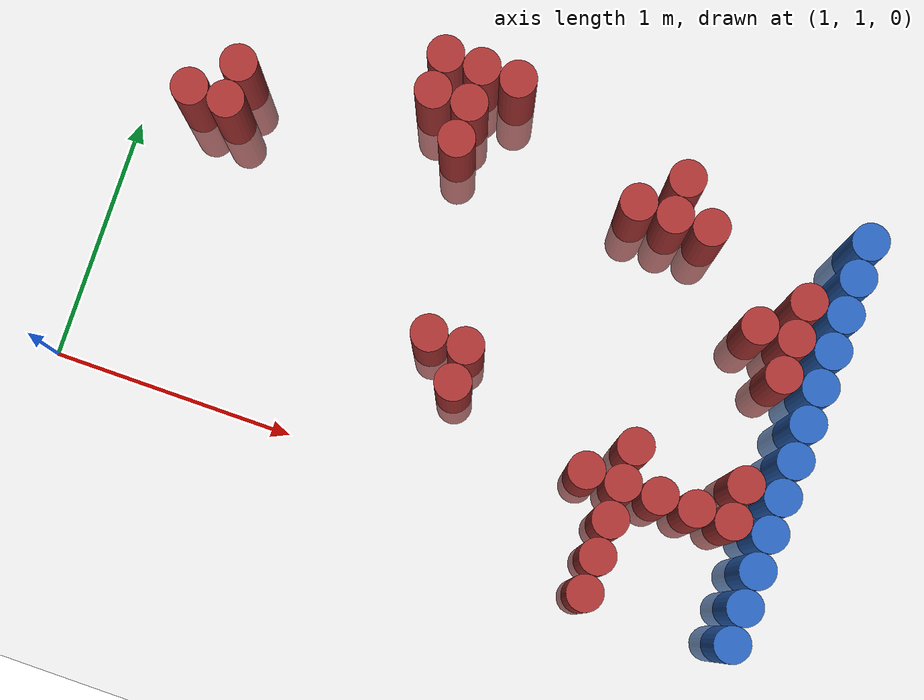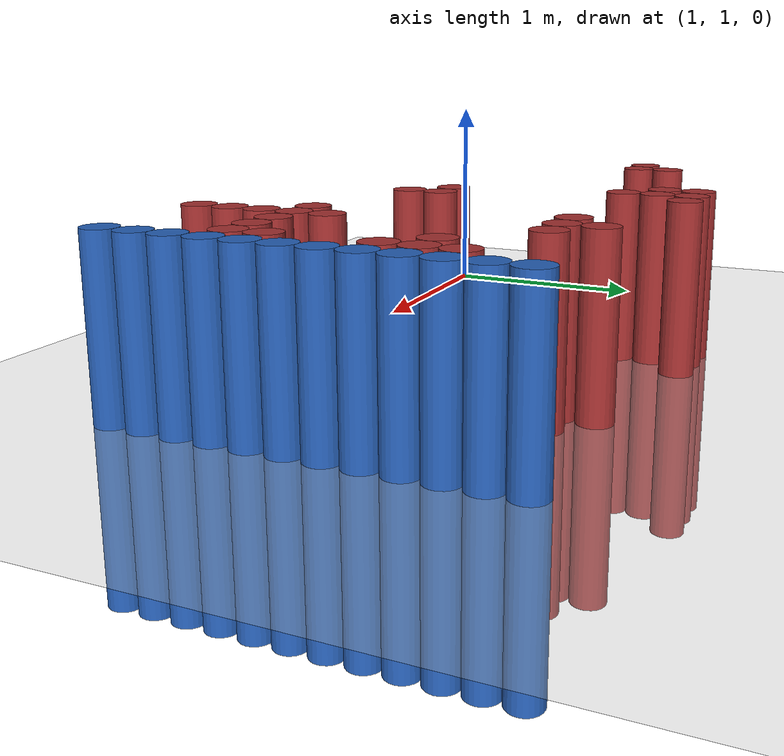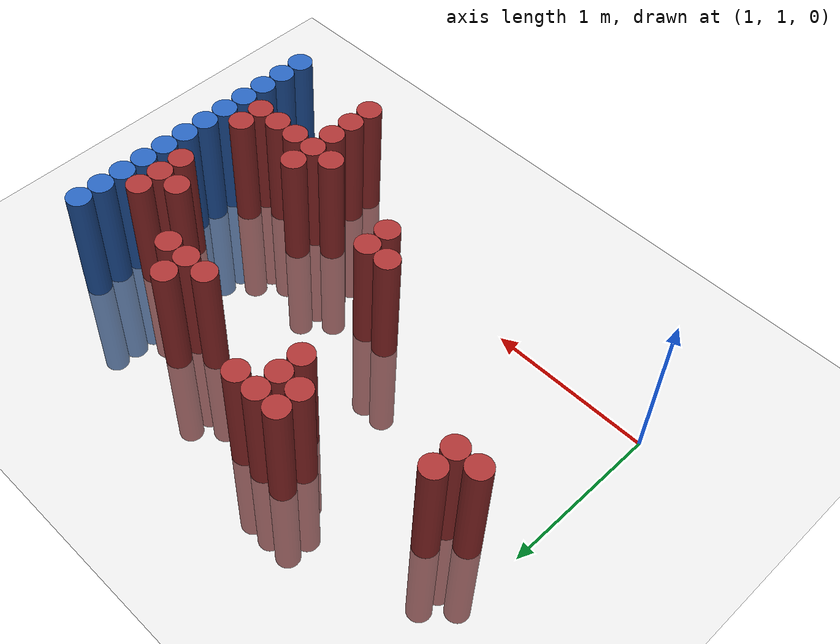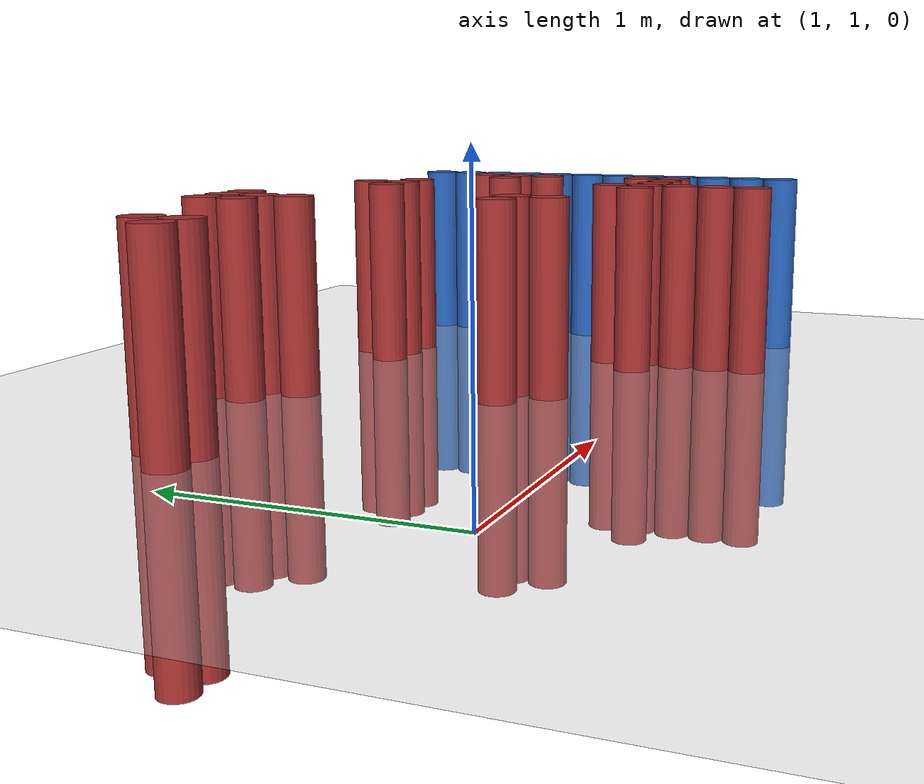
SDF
<sdf version="1.6">
 <world name="default">
  <model name="ground_plane">
   <static>1</static>
   <link name="link">
    <collision name="collision">
     <geometry><plane><normal>0 0 1</normal><size>100 100</size></plane></geometry>
     <surface><friction><ode><mu>100</mu><mu2>50</mu2></ode></friction></surface>
    </collision>
    <visual name="visual">
     <cast_shadows>0</cast_shadows>
     <geometry><plane><normal>0 0 1</normal><size>100 100</size></plane></geometry>
     <material>
      <script><uri>file://media/materials/scripts/gazebo.material</uri><name>Gazebo/Grey</name></script>
     </material>
    </visual>
   </link>
  </model>
  <model name="unit_cylinder_124">
   <static>1</static>
   <pose>3.925000 0.775000 0.000000 0.000000 0.000000 0.000000</pose>
   <link name="link">
    <inertial>
     <mass>1</mass>
     <inertia><ixx>0.145833</ixx><ixy>0</ixy><ixz>0</ixz><iyy>0.145833</iyy><iyz>0</iyz><izz>0.125</izz></inertia>
    </inertial>
    <collision name="collision">
     <geometry><cylinder><radius>0.075000</radius><length>1.5</length></cylinder></geometry>
    </collision>
    <visual name="visual">
     <geometry><cylinder><radius>0.075000</radius><length>1.5</length></cylinder></geometry>
     <material>
      <ambient>0.152000 0.379000 0.720000 1</ambient>
      <diffuse>0.152000 0.379000 0.720000 1</diffuse>
     </material>
     <material>
      <script><name>Gazebo/Grey</name><uri>file://media/materials/scripts/gazebo.material</uri></script>
     </material>
    </visual>
   </link>
  </model>
  <model name="unit_cylinder_126">
   <static>1</static>
   <pose>3.925000 0.925000 0.000000 0.000000 0.000000 0.000000</pose>
   <link name="link">
    <inertial>
     <mass>1</mass>
     <inertia><ixx>0.145833</ixx><ixy>0</ixy><ixz>0</ixz><iyy>0.145833</iyy><iyz>0</iyz><izz>0.125</izz></inertia>
    </inertial>
    <collision name="collision">
     <geometry><cylinder><radius>0.075000</radius><length>1.5</length></cylinder></geometry>
    </collision>
    <visual name="visual">
     <geometry><cylinder><radius>0.075000</radius><length>1.5</length></cylinder></geometry>
     <material>
      <ambient>0.152000 0.379000 0.720000 1</ambient>
      <diffuse>0.152000 0.379000 0.720000 1</diffuse>
     </material>
     <material>
      <script><name>Gazebo/Grey</name><uri>file://media/materials/scripts/gazebo.material</uri></script>
     </material>
    </visual>
   </link>
  </model>
  <model name="unit_cylinder_128">
   <static>1</static>
   <pose>3.925000 1.075000 0.000000 0.000000 0.000000 0.000000</pose>
   <link name="link">
    <inertial>
     <mass>1</mass>
     <inertia><ixx>0.145833</ixx><ixy>0</ixy><ixz>0</ixz><iyy>0.145833</iyy><iyz>0</iyz><izz>0.125</izz></inertia>
    </inertial>
    <collision name="collision">
     <geometry><cylinder><radius>0.075000</radius><length>1.5</length></cylinder></geometry>
    </collision>
    <visual name="visual">
     <geometry><cylinder><radius>0.075000</radius><length>1.5</length></cylinder></geometry>
     <material>
      <ambient>0.152000 0.379000 0.720000 1</ambient>
      <diffuse>0.152000 0.379000 0.720000 1</diffuse>
     </material>
     <material>
      <script><name>Gazebo/Grey</name><uri>file://media/materials/scripts/gazebo.material</uri></script>
     </material>
    </visual>
   </link>
  </model>
  <model name="unit_cylinder_130">
   <static>1</static>
   <pose>3.925000 1.225000 0.000000 0.000000 0.000000 0.000000</pose>
   <link name="link">
    <inertial>
     <mass>1</mass>
     <inertia><ixx>0.145833</ixx><ixy>0</ixy><ixz>0</ixz><iyy>0.145833</iyy><iyz>0</iyz><izz>0.125</izz></inertia>
    </inertial>
    <collision name="collision">
     <geometry><cylinder><radius>0.075000</radius><length>1.5</length></cylinder></geometry>
    </collision>
    <visual name="visual">
     <geometry><cylinder><radius>0.075000</radius><length>1.5</length></cylinder></geometry>
     <material>
      <ambient>0.152000 0.379000 0.720000 1</ambient>
      <diffuse>0.152000 0.379000 0.720000 1</diffuse>
     </material>
     <material>
      <script><name>Gazebo/Grey</name><uri>file://media/materials/scripts/gazebo.material</uri></script>
     </material>
    </visual>
   </link>
  </model>
  <model name="unit_cylinder_132">
   <static>1</static>
   <pose>3.925000 1.375000 0.000000 0.000000 0.000000 0.000000</pose>
   <link name="link">
    <inertial>
     <mass>1</mass>
     <inertia><ixx>0.145833</ixx><ixy>0</ixy><ixz>0</ixz><iyy>0.145833</iyy><iyz>0</iyz><izz>0.125</izz></inertia>
    </inertial>
    <collision name="collision">
     <geometry><cylinder><radius>0.075000</radius><length>1.5</length></cylinder></geometry>
    </collision>
    <visual name="visual">
     <geometry><cylinder><radius>0.075000</radius><length>1.5</length></cylinder></geometry>
     <material>
      <ambient>0.152000 0.379000 0.720000 1</ambient>
      <diffuse>0.152000 0.379000 0.720000 1</diffuse>
     </material>
     <material>
      <script><name>Gazebo/Grey</name><uri>file://media/materials/scripts/gazebo.material</uri></script>
     </material>
    </visual>
   </link>
  </model>
  <model name="unit_cylinder_134">
   <static>1</static>
   <pose>3.925000 1.525000 0.000000 0.000000 0.000000 0.000000</pose>
   <link name="link">
    <inertial>
     <mass>1</mass>
     <inertia><ixx>0.145833</ixx><ixy>0</ixy><ixz>0</ixz><iyy>0.145833</iyy><iyz>0</iyz><izz>0.125</izz></inertia>
    </inertial>
    <collision name="collision">
     <geometry><cylinder><radius>0.075000</radius><length>1.5</length></cylinder></geometry>
    </collision>
    <visual name="visual">
     <geometry><cylinder><radius>0.075000</radius><length>1.5</length></cylinder></geometry>
     <material>
      <ambient>0.152000 0.379000 0.720000 1</ambient>
      <diffuse>0.152000 0.379000 0.720000 1</diffuse>
     </material>
     <material>
      <script><name>Gazebo/Grey</name><uri>file://media/materials/scripts/gazebo.material</uri></script>
     </material>
    </visual>
   </link>
  </model>
  <model name="unit_cylinder_136">
   <static>1</static>
   <pose>3.925000 1.675000 0.000000 0.000000 0.000000 0.000000</pose>
   <link name="link">
    <inertial>
     <mass>1</mass>
     <inertia><ixx>0.145833</ixx><ixy>0</ixy><ixz>0</ixz><iyy>0.145833</iyy><iyz>0</iyz><izz>0.125</izz></inertia>
    </inertial>
    <collision name="collision">
     <geometry><cylinder><radius>0.075000</radius><length>1.5</length></cylinder></geometry>
    </collision>
    <visual name="visual">
     <geometry><cylinder><radius>0.075000</radius><length>1.5</length></cylinder></geometry>
     <material>
      <ambient>0.152000 0.379000 0.720000 1</ambient>
      <diffuse>0.152000 0.379000 0.720000 1</diffuse>
     </material>
     <material>
      <script><name>Gazebo/Grey</name><uri>file://media/materials/scripts/gazebo.material</uri></script>
     </material>
    </visual>
   </link>
  </model>
  <model name="unit_cylinder_138">
   <static>1</static>
   <pose>3.925000 1.825000 0.000000 0.000000 0.000000 0.000000</pose>
   <link name="link">
    <inertial>
     <mass>1</mass>
     <inertia><ixx>0.145833</ixx><ixy>0</ixy><ixz>0</ixz><iyy>0.145833</iyy><iyz>0</iyz><izz>0.125</izz></inertia>
    </inertial>
    <collision name="collision">
     <geometry><cylinder><radius>0.075000</radius><length>1.5</length></cylinder></geometry>
    </collision>
    <visual name="visual">
     <geometry><cylinder><radius>0.075000</radius><length>1.5</length></cylinder></geometry>
     <material>
      <ambient>0.152000 0.379000 0.720000 1</ambient>
      <diffuse>0.152000 0.379000 0.720000 1</diffuse>
     </material>
     <material>
      <script><name>Gazebo/Grey</name><uri>file://media/materials/scripts/gazebo.material</uri></script>
     </material>
    </visual>
   </link>
  </model>
  <model name="unit_cylinder_140">
   <static>1</static>
   <pose>3.925000 1.975000 0.000000 0.000000 0.000000 0.000000</pose>
   <link name="link">
    <inertial>
     <mass>1</mass>
     <inertia><ixx>0.145833</ixx><ixy>0</ixy><ixz>0</ixz><iyy>0.145833</iyy><iyz>0</iyz><izz>0.125</izz></inertia>
    </inertial>
    <collision name="collision">
     <geometry><cylinder><radius>0.075000</radius><length>1.5</length></cylinder></geometry>
    </collision>
    <visual name="visual">
     <geometry><cylinder><radius>0.075000</radius><length>1.5</length></cylinder></geometry>
     <material>
      <ambient>0.152000 0.379000 0.720000 1</ambient>
      <diffuse>0.152000 0.379000 0.720000 1</diffuse>
     </material>
     <material>
      <script><name>Gazebo/Grey</name><uri>file://media/materials/scripts/gazebo.material</uri></script>
     </material>
    </visual>
   </link>
  </model>
  <model name="unit_cylinder_142">
   <static>1</static>
   <pose>3.925000 2.125000 0.000000 0.000000 0.000000 0.000000</pose>
   <link name="link">
    <inertial>
     <mass>1</mass>
     <inertia><ixx>0.145833</ixx><ixy>0</ixy><ixz>0</ixz><iyy>0.145833</iyy><iyz>0</iyz><izz>0.125</izz></inertia>
    </inertial>
    <collision name="collision">
     <geometry><cylinder><radius>0.075000</radius><length>1.5</length></cylinder></geometry>
    </collision>
    <visual name="visual">
     <geometry><cylinder><radius>0.075000</radius><length>1.5</length></cylinder></geometry>
     <material>
      <ambient>0.152000 0.379000 0.720000 1</ambient>
      <diffuse>0.152000 0.379000 0.720000 1</diffuse>
     </material>
     <material>
      <script><name>Gazebo/Grey</name><uri>file://media/materials/scripts/gazebo.material</uri></script>
     </material>
    </visual>
   </link>
  </model>
  <model name="unit_cylinder_144">
   <static>1</static>
   <pose>3.925000 2.275000 0.000000 0.000000 0.000000 0.000000</pose>
   <link name="link">
    <inertial>
     <mass>1</mass>
     <inertia><ixx>0.145833</ixx><ixy>0</ixy><ixz>0</ixz><iyy>0.145833</iyy><iyz>0</iyz><izz>0.125</izz></inertia>
    </inertial>
    <collision name="collision">
     <geometry><cylinder><radius>0.075000</radius><length>1.5</length></cylinder></geometry>
    </collision>
    <visual name="visual">
     <geometry><cylinder><radius>0.075000</radius><length>1.5</length></cylinder></geometry>
     <material>
      <ambient>0.152000 0.379000 0.720000 1</ambient>
      <diffuse>0.152000 0.379000 0.720000 1</diffuse>
     </material>
     <material>
      <script><name>Gazebo/Grey</name><uri>file://media/materials/scripts/gazebo.material</uri></script>
     </material>
    </visual>
   </link>
  </model>
  <model name="unit_cylinder_146">
   <static>1</static>
   <pose>3.925000 2.425000 0.000000 0.000000 0.000000 0.000000</pose>
   <link name="link">
    <inertial>
     <mass>1</mass>
     <inertia><ixx>0.145833</ixx><ixy>0</ixy><ixz>0</ixz><iyy>0.145833</iyy><iyz>0</iyz><izz>0.125</izz></inertia>
    </inertial>
    <collision name="collision">
     <geometry><cylinder><radius>0.075000</radius><length>1.5</length></cylinder></geometry>
    </collision>
    <visual name="visual">
     <geometry><cylinder><radius>0.075000</radius><length>1.5</length></cylinder></geometry>
     <material>
      <ambient>0.152000 0.379000 0.720000 1</ambient>
      <diffuse>0.152000 0.379000 0.720000 1</diffuse>
     </material>
     <material>
      <script><name>Gazebo/Grey</name><uri>file://media/materials/scripts/gazebo.material</uri></script>
     </material>
    </visual>
   </link>
  </model>
  <model name="unit_cylinder_416">
   <static>1</static>
   <pose>1.225000 2.125000 0.000000 0.000000 0.000000 0.000000</pose>
   <link name="link">
    <inertial>
     <mass>1</mass>
     <inertia><ixx>0.145833</ixx><ixy>0</ixy><ixz>0</ixz><iyy>0.145833</iyy><iyz>0</iyz><izz>0.125</izz></inertia>
    </inertial>
    <collision name="collision">
     <geometry><cylinder><radius>0.075000</radius><length>1.5</length></cylinder></geometry>
    </collision>
    <visual name="visual">
     <geometry><cylinder><radius>0.075000</radius><length>1.5</length></cylinder></geometry>
     <material>
      <ambient>0.648000 0.192000 0.192000 1</ambient>
      <diffuse>0.648000 0.192000 0.192000 1</diffuse>
     </material>
     <material>
      <script><name>Gazebo/Grey</name><uri>file://media/materials/scripts/gazebo.material</uri></script>
     </material>
    </visual>
   </link>
  </model>
  <model name="unit_cylinder_421">
   <static>1</static>
   <pose>1.375000 2.125000 0.000000 0.000000 0.000000 0.000000</pose>
   <link name="link">
    <inertial>
     <mass>1</mass>
     <inertia><ixx>0.145833</ixx><ixy>0</ixy><ixz>0</ixz><iyy>0.145833</iyy><iyz>0</iyz><izz>0.125</izz></inertia>
    </inertial>
    <collision name="collision">
     <geometry><cylinder><radius>0.075000</radius><length>1.5</length></cylinder></geometry>
    </collision>
    <visual name="visual">
     <geometry><cylinder><radius>0.075000</radius><length>1.5</length></cylinder></geometry>
     <material>
      <ambient>0.648000 0.192000 0.192000 1</ambient>
      <diffuse>0.648000 0.192000 0.192000 1</diffuse>
     </material>
     <material>
      <script><name>Gazebo/Grey</name><uri>file://media/materials/scripts/gazebo.material</uri></script>
     </material>
    </visual>
   </link>
  </model>
  <model name="unit_cylinder_422">
   <static>1</static>
   <pose>1.375000 2.275000 0.000000 0.000000 0.000000 0.000000</pose>
   <link name="link">
    <inertial>
     <mass>1</mass>
     <inertia><ixx>0.145833</ixx><ixy>0</ixy><ixz>0</ixz><iyy>0.145833</iyy><iyz>0</iyz><izz>0.125</izz></inertia>
    </inertial>
    <collision name="collision">
     <geometry><cylinder><radius>0.075000</radius><length>1.5</length></cylinder></geometry>
    </collision>
    <visual name="visual">
     <geometry><cylinder><radius>0.075000</radius><length>1.5</length></cylinder></geometry>
     <material>
      <ambient>0.648000 0.192000 0.192000 1</ambient>
      <diffuse>0.648000 0.192000 0.192000 1</diffuse>
     </material>
     <material>
      <script><name>Gazebo/Grey</name><uri>file://media/materials/scripts/gazebo.material</uri></script>
     </material>
    </visual>
   </link>
  </model>
  <model name="unit_cylinder_438">
   <static>1</static>
   <pose>2.125000 2.425000 0.000000 0.000000 0.000000 0.000000</pose>
   <link name="link">
    <inertial>
     <mass>1</mass>
     <inertia><ixx>0.145833</ixx><ixy>0</ixy><ixz>0</ixz><iyy>0.145833</iyy><iyz>0</iyz><izz>0.125</izz></inertia>
    </inertial>
    <collision name="collision">
     <geometry><cylinder><radius>0.075000</radius><length>1.5</length></cylinder></geometry>
    </collision>
    <visual name="visual">
     <geometry><cylinder><radius>0.075000</radius><length>1.5</length></cylinder></geometry>
     <material>
      <ambient>0.648000 0.192000 0.192000 1</ambient>
      <diffuse>0.648000 0.192000 0.192000 1</diffuse>
     </material>
     <material>
      <script><name>Gazebo/Grey</name><uri>file://media/materials/scripts/gazebo.material</uri></script>
     </material>
    </visual>
   </link>
  </model>
  <model name="unit_cylinder_439">
   <static>1</static>
   <pose>2.125000 2.575000 0.000000 0.000000 0.000000 0.000000</pose>
   <link name="link">
    <inertial>
     <mass>1</mass>
     <inertia><ixx>0.145833</ixx><ixy>0</ixy><ixz>0</ixz><iyy>0.145833</iyy><iyz>0</iyz><izz>0.125</izz></inertia>
    </inertial>
    <collision name="collision">
     <geometry><cylinder><radius>0.075000</radius><length>1.5</length></cylinder></geometry>
    </collision>
    <visual name="visual">
     <geometry><cylinder><radius>0.075000</radius><length>1.5</length></cylinder></geometry>
     <material>
      <ambient>0.648000 0.192000 0.192000 1</ambient>
      <diffuse>0.648000 0.192000 0.192000 1</diffuse>
     </material>
     <material>
      <script><name>Gazebo/Grey</name><uri>file://media/materials/scripts/gazebo.material</uri></script>
     </material>
    </visual>
   </link>
  </model>
  <model name="unit_cylinder_443">
   <static>1</static>
   <pose>2.275000 2.275000 0.000000 0.000000 0.000000 0.000000</pose>
   <link name="link">
    <inertial>
     <mass>1</mass>
     <inertia><ixx>0.145833</ixx><ixy>0</ixy><ixz>0</ixz><iyy>0.145833</iyy><iyz>0</iyz><izz>0.125</izz></inertia>
    </inertial>
    <collision name="collision">
     <geometry><cylinder><radius>0.075000</radius><length>1.5</length></cylinder></geometry>
    </collision>
    <visual name="visual">
     <geometry><cylinder><radius>0.075000</radius><length>1.5</length></cylinder></geometry>
     <material>
      <ambient>0.648000 0.192000 0.192000 1</ambient>
      <diffuse>0.648000 0.192000 0.192000 1</diffuse>
     </material>
     <material>
      <script><name>Gazebo/Grey</name><uri>file://media/materials/scripts/gazebo.material</uri></script>
     </material>
    </visual>
   </link>
  </model>
  <model name="unit_cylinder_444">
   <static>1</static>
   <pose>2.275000 2.425000 0.000000 0.000000 0.000000 0.000000</pose>
   <link name="link">
    <inertial>
     <mass>1</mass>
     <inertia><ixx>0.145833</ixx><ixy>0</ixy><ixz>0</ixz><iyy>0.145833</iyy><iyz>0</iyz><izz>0.125</izz></inertia>
    </inertial>
    <collision name="collision">
     <geometry><cylinder><radius>0.075000</radius><length>1.5</length></cylinder></geometry>
    </collision>
    <visual name="visual">
     <geometry><cylinder><radius>0.075000</radius><length>1.5</length></cylinder></geometry>
     <material>
      <ambient>0.648000 0.192000 0.192000 1</ambient>
      <diffuse>0.648000 0.192000 0.192000 1</diffuse>
     </material>
     <material>
      <script><name>Gazebo/Grey</name><uri>file://media/materials/scripts/gazebo.material</uri></script>
     </material>
    </visual>
   </link>
  </model>
  <model name="unit_cylinder_445">
   <static>1</static>
   <pose>2.275000 2.575000 0.000000 0.000000 0.000000 0.000000</pose>
   <link name="link">
    <inertial>
     <mass>1</mass>
     <inertia><ixx>0.145833</ixx><ixy>0</ixy><ixz>0</ixz><iyy>0.145833</iyy><iyz>0</iyz><izz>0.125</izz></inertia>
    </inertial>
    <collision name="collision">
     <geometry><cylinder><radius>0.075000</radius><length>1.5</length></cylinder></geometry>
    </collision>
    <visual name="visual">
     <geometry><cylinder><radius>0.075000</radius><length>1.5</length></cylinder></geometry>
     <material>
      <ambient>0.648000 0.192000 0.192000 1</ambient>
      <diffuse>0.648000 0.192000 0.192000 1</diffuse>
     </material>
     <material>
      <script><name>Gazebo/Grey</name><uri>file://media/materials/scripts/gazebo.material</uri></script>
     </material>
    </visual>
   </link>
  </model>
  <model name="unit_cylinder_453">
   <static>1</static>
   <pose>2.425000 1.525000 0.000000 0.000000 0.000000 0.000000</pose>
   <link name="link">
    <inertial>
     <mass>1</mass>
     <inertia><ixx>0.145833</ixx><ixy>0</ixy><ixz>0</ixz><iyy>0.145833</iyy><iyz>0</iyz><izz>0.125</izz></inertia>
    </inertial>
    <collision name="collision">
     <geometry><cylinder><radius>0.075000</radius><length>1.5</length></cylinder></geometry>
    </collision>
    <visual name="visual">
     <geometry><cylinder><radius>0.075000</radius><length>1.5</length></cylinder></geometry>
     <material>
      <ambient>0.648000 0.192000 0.192000 1</ambient>
      <diffuse>0.648000 0.192000 0.192000 1</diffuse>
     </material>
     <material>
      <script><name>Gazebo/Grey</name><uri>file://media/materials/scripts/gazebo.material</uri></script>
     </material>
    </visual>
   </link>
  </model>
  <model name="unit_cylinder_454">
   <static>1</static>
   <pose>2.425000 2.575000 0.000000 0.000000 0.000000 0.000000</pose>
   <link name="link">
    <inertial>
     <mass>1</mass>
     <inertia><ixx>0.145833</ixx><ixy>0</ixy><ixz>0</ixz><iyy>0.145833</iyy><iyz>0</iyz><izz>0.125</izz></inertia>
    </inertial>
    <collision name="collision">
     <geometry><cylinder><radius>0.075000</radius><length>1.5</length></cylinder></geometry>
    </collision>
    <visual name="visual">
     <geometry><cylinder><radius>0.075000</radius><length>1.5</length></cylinder></geometry>
     <material>
      <ambient>0.648000 0.192000 0.192000 1</ambient>
      <diffuse>0.648000 0.192000 0.192000 1</diffuse>
     </material>
     <material>
      <script><name>Gazebo/Grey</name><uri>file://media/materials/scripts/gazebo.material</uri></script>
     </material>
    </visual>
   </link>
  </model>
  <model name="unit_cylinder_460">
   <static>1</static>
   <pose>2.575000 1.375000 0.000000 0.000000 0.000000 0.000000</pose>
   <link name="link">
    <inertial>
     <mass>1</mass>
     <inertia><ixx>0.145833</ixx><ixy>0</ixy><ixz>0</ixz><iyy>0.145833</iyy><iyz>0</iyz><izz>0.125</izz></inertia>
    </inertial>
    <collision name="collision">
     <geometry><cylinder><radius>0.075000</radius><length>1.5</length></cylinder></geometry>
    </collision>
    <visual name="visual">
     <geometry><cylinder><radius>0.075000</radius><length>1.5</length></cylinder></geometry>
     <material>
      <ambient>0.648000 0.192000 0.192000 1</ambient>
      <diffuse>0.648000 0.192000 0.192000 1</diffuse>
     </material>
     <material>
      <script><name>Gazebo/Grey</name><uri>file://media/materials/scripts/gazebo.material</uri></script>
     </material>
    </visual>
   </link>
  </model>
  <model name="unit_cylinder_461">
   <static>1</static>
   <pose>2.575000 1.525000 0.000000 0.000000 0.000000 0.000000</pose>
   <link name="link">
    <inertial>
     <mass>1</mass>
     <inertia><ixx>0.145833</ixx><ixy>0</ixy><ixz>0</ixz><iyy>0.145833</iyy><iyz>0</iyz><izz>0.125</izz></inertia>
    </inertial>
    <collision name="collision">
     <geometry><cylinder><radius>0.075000</radius><length>1.5</length></cylinder></geometry>
    </collision>
    <visual name="visual">
     <geometry><cylinder><radius>0.075000</radius><length>1.5</length></cylinder></geometry>
     <material>
      <ambient>0.648000 0.192000 0.192000 1</ambient>
      <diffuse>0.648000 0.192000 0.192000 1</diffuse>
     </material>
     <material>
      <script><name>Gazebo/Grey</name><uri>file://media/materials/scripts/gazebo.material</uri></script>
     </material>
    </visual>
   </link>
  </model>
  <model name="unit_cylinder_475">
   <static>1</static>
   <pose>3.025000 2.275000 0.000000 0.000000 0.000000 0.000000</pose>
   <link name="link">
    <inertial>
     <mass>1</mass>
     <inertia><ixx>0.145833</ixx><ixy>0</ixy><ixz>0</ixz><iyy>0.145833</iyy><iyz>0</iyz><izz>0.125</izz></inertia>
    </inertial>
    <collision name="collision">
     <geometry><cylinder><radius>0.075000</radius><length>1.5</length></cylinder></geometry>
    </collision>
    <visual name="visual">
     <geometry><cylinder><radius>0.075000</radius><length>1.5</length></cylinder></geometry>
     <material>
      <ambient>0.648000 0.192000 0.192000 1</ambient>
      <diffuse>0.648000 0.192000 0.192000 1</diffuse>
     </material>
     <material>
      <script><name>Gazebo/Grey</name><uri>file://media/materials/scripts/gazebo.material</uri></script>
     </material>
    </visual>
   </link>
  </model>
  <model name="unit_cylinder_482">
   <static>1</static>
   <pose>3.175000 1.225000 0.000000 0.000000 0.000000 0.000000</pose>
   <link name="link">
    <inertial>
     <mass>1</mass>
     <inertia><ixx>0.145833</ixx><ixy>0</ixy><ixz>0</ixz><iyy>0.145833</iyy><iyz>0</iyz><izz>0.125</izz></inertia>
    </inertial>
    <collision name="collision">
     <geometry><cylinder><radius>0.075000</radius><length>1.5</length></cylinder></geometry>
    </collision>
    <visual name="visual">
     <geometry><cylinder><radius>0.075000</radius><length>1.5</length></cylinder></geometry>
     <material>
      <ambient>0.648000 0.192000 0.192000 1</ambient>
      <diffuse>0.648000 0.192000 0.192000 1</diffuse>
     </material>
     <material>
      <script><name>Gazebo/Grey</name><uri>file://media/materials/scripts/gazebo.material</uri></script>
     </material>
    </visual>
   </link>
  </model>
  <model name="unit_cylinder_483">
   <static>1</static>
   <pose>3.175000 2.275000 0.000000 0.000000 0.000000 0.000000</pose>
   <link name="link">
    <inertial>
     <mass>1</mass>
     <inertia><ixx>0.145833</ixx><ixy>0</ixy><ixz>0</ixz><iyy>0.145833</iyy><iyz>0</iyz><izz>0.125</izz></inertia>
    </inertial>
    <collision name="collision">
     <geometry><cylinder><radius>0.075000</radius><length>1.5</length></cylinder></geometry>
    </collision>
    <visual name="visual">
     <geometry><cylinder><radius>0.075000</radius><length>1.5</length></cylinder></geometry>
     <material>
      <ambient>0.648000 0.192000 0.192000 1</ambient>
      <diffuse>0.648000 0.192000 0.192000 1</diffuse>
     </material>
     <material>
      <script><name>Gazebo/Grey</name><uri>file://media/materials/scripts/gazebo.material</uri></script>
     </material>
    </visual>
   </link>
  </model>
  <model name="unit_cylinder_484">
   <static>1</static>
   <pose>3.175000 2.425000 0.000000 0.000000 0.000000 0.000000</pose>
   <link name="link">
    <inertial>
     <mass>1</mass>
     <inertia><ixx>0.145833</ixx><ixy>0</ixy><ixz>0</ixz><iyy>0.145833</iyy><iyz>0</iyz><izz>0.125</izz></inertia>
    </inertial>
    <collision name="collision">
     <geometry><cylinder><radius>0.075000</radius><length>1.5</length></cylinder></geometry>
    </collision>
    <visual name="visual">
     <geometry><cylinder><radius>0.075000</radius><length>1.5</length></cylinder></geometry>
     <material>
      <ambient>0.648000 0.192000 0.192000 1</ambient>
      <diffuse>0.648000 0.192000 0.192000 1</diffuse>
     </material>
     <material>
      <script><name>Gazebo/Grey</name><uri>file://media/materials/scripts/gazebo.material</uri></script>
     </material>
    </visual>
   </link>
  </model>
  <model name="unit_cylinder_491">
   <static>1</static>
   <pose>3.325000 0.775000 0.000000 0.000000 0.000000 0.000000</pose>
   <link name="link">
    <inertial>
     <mass>1</mass>
     <inertia><ixx>0.145833</ixx><ixy>0</ixy><ixz>0</ixz><iyy>0.145833</iyy><iyz>0</iyz><izz>0.125</izz></inertia>
    </inertial>
    <collision name="collision">
     <geometry><cylinder><radius>0.075000</radius><length>1.5</length></cylinder></geometry>
    </collision>
    <visual name="visual">
     <geometry><cylinder><radius>0.075000</radius><length>1.5</length></cylinder></geometry>
     <material>
      <ambient>0.648000 0.192000 0.192000 1</ambient>
      <diffuse>0.648000 0.192000 0.192000 1</diffuse>
     </material>
     <material>
      <script><name>Gazebo/Grey</name><uri>file://media/materials/scripts/gazebo.material</uri></script>
     </material>
    </visual>
   </link>
  </model>
  <model name="unit_cylinder_492">
   <static>1</static>
   <pose>3.325000 0.925000 0.000000 0.000000 0.000000 0.000000</pose>
   <link name="link">
    <inertial>
     <mass>1</mass>
     <inertia><ixx>0.145833</ixx><ixy>0</ixy><ixz>0</ixz><iyy>0.145833</iyy><iyz>0</iyz><izz>0.125</izz></inertia>
    </inertial>
    <collision name="collision">
     <geometry><cylinder><radius>0.075000</radius><length>1.5</length></cylinder></geometry>
    </collision>
    <visual name="visual">
     <geometry><cylinder><radius>0.075000</radius><length>1.5</length></cylinder></geometry>
     <material>
      <ambient>0.648000 0.192000 0.192000 1</ambient>
      <diffuse>0.648000 0.192000 0.192000 1</diffuse>
     </material>
     <material>
      <script><name>Gazebo/Grey</name><uri>file://media/materials/scripts/gazebo.material</uri></script>
     </material>
    </visual>
   </link>
  </model>
  <model name="unit_cylinder_493">
   <static>1</static>
   <pose>3.325000 1.075000 0.000000 0.000000 0.000000 0.000000</pose>
   <link name="link">
    <inertial>
     <mass>1</mass>
     <inertia><ixx>0.145833</ixx><ixy>0</ixy><ixz>0</ixz><iyy>0.145833</iyy><iyz>0</iyz><izz>0.125</izz></inertia>
    </inertial>
    <collision name="collision">
     <geometry><cylinder><radius>0.075000</radius><length>1.5</length></cylinder></geometry>
    </collision>
    <visual name="visual">
     <geometry><cylinder><radius>0.075000</radius><length>1.5</length></cylinder></geometry>
     <material>
      <ambient>0.648000 0.192000 0.192000 1</ambient>
      <diffuse>0.648000 0.192000 0.192000 1</diffuse>
     </material>
     <material>
      <script><name>Gazebo/Grey</name><uri>file://media/materials/scripts/gazebo.material</uri></script>
     </material>
    </visual>
   </link>
  </model>
  <model name="unit_cylinder_494">
   <static>1</static>
   <pose>3.325000 1.225000 0.000000 0.000000 0.000000 0.000000</pose>
   <link name="link">
    <inertial>
     <mass>1</mass>
     <inertia><ixx>0.145833</ixx><ixy>0</ixy><ixz>0</ixz><iyy>0.145833</iyy><iyz>0</iyz><izz>0.125</izz></inertia>
    </inertial>
    <collision name="collision">
     <geometry><cylinder><radius>0.075000</radius><length>1.5</length></cylinder></geometry>
    </collision>
    <visual name="visual">
     <geometry><cylinder><radius>0.075000</radius><length>1.5</length></cylinder></geometry>
     <material>
      <ambient>0.648000 0.192000 0.192000 1</ambient>
      <diffuse>0.648000 0.192000 0.192000 1</diffuse>
     </material>
     <material>
      <script><name>Gazebo/Grey</name><uri>file://media/materials/scripts/gazebo.material</uri></script>
     </material>
    </visual>
   </link>
  </model>
  <model name="unit_cylinder_495">
   <static>1</static>
   <pose>3.325000 1.375000 0.000000 0.000000 0.000000 0.000000</pose>
   <link name="link">
    <inertial>
     <mass>1</mass>
     <inertia><ixx>0.145833</ixx><ixy>0</ixy><ixz>0</ixz><iyy>0.145833</iyy><iyz>0</iyz><izz>0.125</izz></inertia>
    </inertial>
    <collision name="collision">
     <geometry><cylinder><radius>0.075000</radius><length>1.5</length></cylinder></geometry>
    </collision>
    <visual name="visual">
     <geometry><cylinder><radius>0.075000</radius><length>1.5</length></cylinder></geometry>
     <material>
      <ambient>0.648000 0.192000 0.192000 1</ambient>
      <diffuse>0.648000 0.192000 0.192000 1</diffuse>
     </material>
     <material>
      <script><name>Gazebo/Grey</name><uri>file://media/materials/scripts/gazebo.material</uri></script>
     </material>
    </visual>
   </link>
  </model>
  <model name="unit_cylinder_496">
   <static>1</static>
   <pose>3.325000 2.275000 0.000000 0.000000 0.000000 0.000000</pose>
   <link name="link">
    <inertial>
     <mass>1</mass>
     <inertia><ixx>0.145833</ixx><ixy>0</ixy><ixz>0</ixz><iyy>0.145833</iyy><iyz>0</iyz><izz>0.125</izz></inertia>
    </inertial>
    <collision name="collision">
     <geometry><cylinder><radius>0.075000</radius><length>1.5</length></cylinder></geometry>
    </collision>
    <visual name="visual">
     <geometry><cylinder><radius>0.075000</radius><length>1.5</length></cylinder></geometry>
     <material>
      <ambient>0.648000 0.192000 0.192000 1</ambient>
      <diffuse>0.648000 0.192000 0.192000 1</diffuse>
     </material>
     <material>
      <script><name>Gazebo/Grey</name><uri>file://media/materials/scripts/gazebo.material</uri></script>
     </material>
    </visual>
   </link>
  </model>
  <model name="unit_cylinder_502">
   <static>1</static>
   <pose>3.475000 1.225000 0.000000 0.000000 0.000000 0.000000</pose>
   <link name="link">
    <inertial>
     <mass>1</mass>
     <inertia><ixx>0.145833</ixx><ixy>0</ixy><ixz>0</ixz><iyy>0.145833</iyy><iyz>0</iyz><izz>0.125</izz></inertia>
    </inertial>
    <collision name="collision">
     <geometry><cylinder><radius>0.075000</radius><length>1.5</length></cylinder></geometry>
    </collision>
    <visual name="visual">
     <geometry><cylinder><radius>0.075000</radius><length>1.5</length></cylinder></geometry>
     <material>
      <ambient>0.648000 0.192000 0.192000 1</ambient>
      <diffuse>0.648000 0.192000 0.192000 1</diffuse>
     </material>
     <material>
      <script><name>Gazebo/Grey</name><uri>file://media/materials/scripts/gazebo.material</uri></script>
     </material>
    </visual>
   </link>
  </model>
  <model name="unit_cylinder_508">
   <static>1</static>
   <pose>3.625000 1.225000 0.000000 0.000000 0.000000 0.000000</pose>
   <link name="link">
    <inertial>
     <mass>1</mass>
     <inertia><ixx>0.145833</ixx><ixy>0</ixy><ixz>0</ixz><iyy>0.145833</iyy><iyz>0</iyz><izz>0.125</izz></inertia>
    </inertial>
    <collision name="collision">
     <geometry><cylinder><radius>0.075000</radius><length>1.5</length></cylinder></geometry>
    </collision>
    <visual name="visual">
     <geometry><cylinder><radius>0.075000</radius><length>1.5</length></cylinder></geometry>
     <material>
      <ambient>0.648000 0.192000 0.192000 1</ambient>
      <diffuse>0.648000 0.192000 0.192000 1</diffuse>
     </material>
     <material>
      <script><name>Gazebo/Grey</name><uri>file://media/materials/scripts/gazebo.material</uri></script>
     </material>
    </visual>
   </link>
  </model>
  <model name="unit_cylinder_509">
   <static>1</static>
   <pose>3.625000 1.975000 0.000000 0.000000 0.000000 0.000000</pose>
   <link name="link">
    <inertial>
     <mass>1</mass>
     <inertia><ixx>0.145833</ixx><ixy>0</ixy><ixz>0</ixz><iyy>0.145833</iyy><iyz>0</iyz><izz>0.125</izz></inertia>
    </inertial>
    <collision name="collision">
     <geometry><cylinder><radius>0.075000</radius><length>1.5</length></cylinder></geometry>
    </collision>
    <visual name="visual">
     <geometry><cylinder><radius>0.075000</radius><length>1.5</length></cylinder></geometry>
     <material>
      <ambient>0.648000 0.192000 0.192000 1</ambient>
      <diffuse>0.648000 0.192000 0.192000 1</diffuse>
     </material>
     <material>
      <script><name>Gazebo/Grey</name><uri>file://media/materials/scripts/gazebo.material</uri></script>
     </material>
    </visual>
   </link>
  </model>
  <model name="unit_cylinder_523">
   <static>1</static>
   <pose>3.775000 1.225000 0.000000 0.000000 0.000000 0.000000</pose>
   <link name="link">
    <inertial>
     <mass>1</mass>
     <inertia><ixx>0.145833</ixx><ixy>0</ixy><ixz>0</ixz><iyy>0.145833</iyy><iyz>0</iyz><izz>0.125</izz></inertia>
    </inertial>
    <collision name="collision">
     <geometry><cylinder><radius>0.075000</radius><length>1.5</length></cylinder></geometry>
    </collision>
    <visual name="visual">
     <geometry><cylinder><radius>0.075000</radius><length>1.5</length></cylinder></geometry>
     <material>
      <ambient>0.648000 0.192000 0.192000 1</ambient>
      <diffuse>0.648000 0.192000 0.192000 1</diffuse>
     </material>
     <material>
      <script><name>Gazebo/Grey</name><uri>file://media/materials/scripts/gazebo.material</uri></script>
     </material>
    </visual>
   </link>
  </model>
  <model name="unit_cylinder_524">
   <static>1</static>
   <pose>3.775000 1.375000 0.000000 0.000000 0.000000 0.000000</pose>
   <link name="link">
    <inertial>
     <mass>1</mass>
     <inertia><ixx>0.145833</ixx><ixy>0</ixy><ixz>0</ixz><iyy>0.145833</iyy><iyz>0</iyz><izz>0.125</izz></inertia>
    </inertial>
    <collision name="collision">
     <geometry><cylinder><radius>0.075000</radius><length>1.5</length></cylinder></geometry>
    </collision>
    <visual name="visual">
     <geometry><cylinder><radius>0.075000</radius><length>1.5</length></cylinder></geometry>
     <material>
      <ambient>0.648000 0.192000 0.192000 1</ambient>
      <diffuse>0.648000 0.192000 0.192000 1</diffuse>
     </material>
     <material>
      <script><name>Gazebo/Grey</name><uri>file://media/materials/scripts/gazebo.material</uri></script>
     </material>
    </visual>
   </link>
  </model>
  <model name="unit_cylinder_525">
   <static>1</static>
   <pose>3.775000 1.825000 0.000000 0.000000 0.000000 0.000000</pose>
   <link name="link">
    <inertial>
     <mass>1</mass>
     <inertia><ixx>0.145833</ixx><ixy>0</ixy><ixz>0</ixz><iyy>0.145833</iyy><iyz>0</iyz><izz>0.125</izz></inertia>
    </inertial>
    <collision name="collision">
     <geometry><cylinder><radius>0.075000</radius><length>1.5</length></cylinder></geometry>
    </collision>
    <visual name="visual">
     <geometry><cylinder><radius>0.075000</radius><length>1.5</length></cylinder></geometry>
     <material>
      <ambient>0.648000 0.192000 0.192000 1</ambient>
      <diffuse>0.648000 0.192000 0.192000 1</diffuse>
     </material>
     <material>
      <script><name>Gazebo/Grey</name><uri>file://media/materials/scripts/gazebo.material</uri></script>
     </material>
    </visual>
   </link>
  </model>
  <model name="unit_cylinder_526">
   <static>1</static>
   <pose>3.775000 1.975000 0.000000 0.000000 0.000000 0.000000</pose>
   <link name="link">
    <inertial>
     <mass>1</mass>
     <inertia><ixx>0.145833</ixx><ixy>0</ixy><ixz>0</ixz><iyy>0.145833</iyy><iyz>0</iyz><izz>0.125</izz></inertia>
    </inertial>
    <collision name="collision">
     <geometry><cylinder><radius>0.075000</radius><length>1.5</length></cylinder></geometry>
    </collision>
    <visual name="visual">
     <geometry><cylinder><radius>0.075000</radius><length>1.5</length></cylinder></geometry>
     <material>
      <ambient>0.648000 0.192000 0.192000 1</ambient>
      <diffuse>0.648000 0.192000 0.192000 1</diffuse>
     </material>
     <material>
      <script><name>Gazebo/Grey</name><uri>file://media/materials/scripts/gazebo.material</uri></script>
     </material>
    </visual>
   </link>
  </model>
  <model name="unit_cylinder_527">
   <static>1</static>
   <pose>3.775000 2.125000 0.000000 0.000000 0.000000 0.000000</pose>
   <link name="link">
    <inertial>
     <mass>1</mass>
     <inertia><ixx>0.145833</ixx><ixy>0</ixy><ixz>0</ixz><iyy>0.145833</iyy><iyz>0</iyz><izz>0.125</izz></inertia>
    </inertial>
    <collision name="collision">
     <geometry><cylinder><radius>0.075000</radius><length>1.5</length></cylinder></geometry>
    </collision>
    <visual name="visual">
     <geometry><cylinder><radius>0.075000</radius><length>1.5</length></cylinder></geometry>
     <material>
      <ambient>0.648000 0.192000 0.192000 1</ambient>
      <diffuse>0.648000 0.192000 0.192000 1</diffuse>
     </material>
     <material>
      <script><name>Gazebo/Grey</name><uri>file://media/materials/scripts/gazebo.material</uri></script>
     </material>
    </visual>
   </link>
  </model>
  <model name="unit_cylinder_557">
   <static>1</static>
   <pose>3.925000 0.775000 0.000000 0.000000 0.000000 0.000000</pose>
   <link name="link">
    <inertial>
     <mass>1</mass>
     <inertia><ixx>0.145833</ixx><ixy>0</ixy><ixz>0</ixz><iyy>0.145833</iyy><iyz>0</iyz><izz>0.125</izz></inertia>
    </inertial>
    <collision name="collision">
     <geometry><cylinder><radius>0.075000</radius><length>1.5</length></cylinder></geometry>
    </collision>
    <visual name="visual">
     <geometry><cylinder><radius>0.075000</radius><length>1.5</length></cylinder></geometry>
     <material>
      <ambient>0.152000 0.379000 0.720000 1</ambient>
      <diffuse>0.152000 0.379000 0.720000 1</diffuse>
     </material>
     <material>
      <script><name>Gazebo/Grey</name><uri>file://media/materials/scripts/gazebo.material</uri></script>
     </material>
    </visual>
   </link>
  </model>
  <model name="unit_cylinder_558">
   <static>1</static>
   <pose>3.925000 0.925000 0.000000 0.000000 0.000000 0.000000</pose>
   <link name="link">
    <inertial>
     <mass>1</mass>
     <inertia><ixx>0.145833</ixx><ixy>0</ixy><ixz>0</ixz><iyy>0.145833</iyy><iyz>0</iyz><izz>0.125</izz></inertia>
    </inertial>
    <collision name="collision">
     <geometry><cylinder><radius>0.075000</radius><length>1.5</length></cylinder></geometry>
    </collision>
    <visual name="visual">
     <geometry><cylinder><radius>0.075000</radius><length>1.5</length></cylinder></geometry>
     <material>
      <ambient>0.152000 0.379000 0.720000 1</ambient>
      <diffuse>0.152000 0.379000 0.720000 1</diffuse>
     </material>
     <material>
      <script><name>Gazebo/Grey</name><uri>file://media/materials/scripts/gazebo.material</uri></script>
     </material>
    </visual>
   </link>
  </model>
  <model name="unit_cylinder_559">
   <static>1</static>
   <pose>3.925000 1.075000 0.000000 0.000000 0.000000 0.000000</pose>
   <link name="link">
    <inertial>
     <mass>1</mass>
     <inertia><ixx>0.145833</ixx><ixy>0</ixy><ixz>0</ixz><iyy>0.145833</iyy><iyz>0</iyz><izz>0.125</izz></inertia>
    </inertial>
    <collision name="collision">
     <geometry><cylinder><radius>0.075000</radius><length>1.5</length></cylinder></geometry>
    </collision>
    <visual name="visual">
     <geometry><cylinder><radius>0.075000</radius><length>1.5</length></cylinder></geometry>
     <material>
      <ambient>0.152000 0.379000 0.720000 1</ambient>
      <diffuse>0.152000 0.379000 0.720000 1</diffuse>
     </material>
     <material>
      <script><name>Gazebo/Grey</name><uri>file://media/materials/scripts/gazebo.material</uri></script>
     </material>
    </visual>
   </link>
  </model>
  <model name="unit_cylinder_560">
   <static>1</static>
   <pose>3.925000 1.225000 0.000000 0.000000 0.000000 0.000000</pose>
   <link name="link">
    <inertial>
     <mass>1</mass>
     <inertia><ixx>0.145833</ixx><ixy>0</ixy><ixz>0</ixz><iyy>0.145833</iyy><iyz>0</iyz><izz>0.125</izz></inertia>
    </inertial>
    <collision name="collision">
     <geometry><cylinder><radius>0.075000</radius><length>1.5</length></cylinder></geometry>
    </collision>
    <visual name="visual">
     <geometry><cylinder><radius>0.075000</radius><length>1.5</length></cylinder></geometry>
     <material>
      <ambient>0.152000 0.379000 0.720000 1</ambient>
      <diffuse>0.152000 0.379000 0.720000 1</diffuse>
     </material>
     <material>
      <script><name>Gazebo/Grey</name><uri>file://media/materials/scripts/gazebo.material</uri></script>
     </material>
    </visual>
   </link>
  </model>
  <model name="unit_cylinder_561">
   <static>1</static>
   <pose>3.925000 1.375000 0.000000 0.000000 0.000000 0.000000</pose>
   <link name="link">
    <inertial>
     <mass>1</mass>
     <inertia><ixx>0.145833</ixx><ixy>0</ixy><ixz>0</ixz><iyy>0.145833</iyy><iyz>0</iyz><izz>0.125</izz></inertia>
    </inertial>
    <collision name="collision">
     <geometry><cylinder><radius>0.075000</radius><length>1.5</length></cylinder></geometry>
    </collision>
    <visual name="visual">
     <geometry><cylinder><radius>0.075000</radius><length>1.5</length></cylinder></geometry>
     <material>
      <ambient>0.152000 0.379000 0.720000 1</ambient>
      <diffuse>0.152000 0.379000 0.720000 1</diffuse>
     </material>
     <material>
      <script><name>Gazebo/Grey</name><uri>file://media/materials/scripts/gazebo.material</uri></script>
     </material>
    </visual>
   </link>
  </model>
  <model name="unit_cylinder_562">
   <static>1</static>
   <pose>3.925000 1.525000 0.000000 0.000000 0.000000 0.000000</pose>
   <link name="link">
    <inertial>
     <mass>1</mass>
     <inertia><ixx>0.145833</ixx><ixy>0</ixy><ixz>0</ixz><iyy>0.145833</iyy><iyz>0</iyz><izz>0.125</izz></inertia>
    </inertial>
    <collision name="collision">
     <geometry><cylinder><radius>0.075000</radius><length>1.5</length></cylinder></geometry>
    </collision>
    <visual name="visual">
     <geometry><cylinder><radius>0.075000</radius><length>1.5</length></cylinder></geometry>
     <material>
      <ambient>0.152000 0.379000 0.720000 1</ambient>
      <diffuse>0.152000 0.379000 0.720000 1</diffuse>
     </material>
     <material>
      <script><name>Gazebo/Grey</name><uri>file://media/materials/scripts/gazebo.material</uri></script>
     </material>
    </visual>
   </link>
  </model>
  <model name="unit_cylinder_563">
   <static>1</static>
   <pose>3.925000 1.675000 0.000000 0.000000 0.000000 0.000000</pose>
   <link name="link">
    <inertial>
     <mass>1</mass>
     <inertia><ixx>0.145833</ixx><ixy>0</ixy><ixz>0</ixz><iyy>0.145833</iyy><iyz>0</iyz><izz>0.125</izz></inertia>
    </inertial>
    <collision name="collision">
     <geometry><cylinder><radius>0.075000</radius><length>1.5</length></cylinder></geometry>
    </collision>
    <visual name="visual">
     <geometry><cylinder><radius>0.075000</radius><length>1.5</length></cylinder></geometry>
     <material>
      <ambient>0.152000 0.379000 0.720000 1</ambient>
      <diffuse>0.152000 0.379000 0.720000 1</diffuse>
     </material>
     <material>
      <script><name>Gazebo/Grey</name><uri>file://media/materials/scripts/gazebo.material</uri></script>
     </material>
    </visual>
   </link>
  </model>
  <model name="unit_cylinder_564">
   <static>1</static>
   <pose>3.925000 1.825000 0.000000 0.000000 0.000000 0.000000</pose>
   <link name="link">
    <inertial>
     <mass>1</mass>
     <inertia><ixx>0.145833</ixx><ixy>0</ixy><ixz>0</ixz><iyy>0.145833</iyy><iyz>0</iyz><izz>0.125</izz></inertia>
    </inertial>
    <collision name="collision">
     <geometry><cylinder><radius>0.075000</radius><length>1.5</length></cylinder></geometry>
    </collision>
    <visual name="visual">
     <geometry><cylinder><radius>0.075000</radius><length>1.5</length></cylinder></geometry>
     <material>
      <ambient>0.152000 0.379000 0.720000 1</ambient>
      <diffuse>0.152000 0.379000 0.720000 1</diffuse>
     </material>
     <material>
      <script><name>Gazebo/Grey</name><uri>file://media/materials/scripts/gazebo.material</uri></script>
     </material>
    </visual>
   </link>
  </model>
  <model name="unit_cylinder_565">
   <static>1</static>
   <pose>3.925000 1.975000 0.000000 0.000000 0.000000 0.000000</pose>
   <link name="link">
    <inertial>
     <mass>1</mass>
     <inertia><ixx>0.145833</ixx><ixy>0</ixy><ixz>0</ixz><iyy>0.145833</iyy><iyz>0</iyz><izz>0.125</izz></inertia>
    </inertial>
    <collision name="collision">
     <geometry><cylinder><radius>0.075000</radius><length>1.5</length></cylinder></geometry>
    </collision>
    <visual name="visual">
     <geometry><cylinder><radius>0.075000</radius><length>1.5</length></cylinder></geometry>
     <material>
      <ambient>0.152000 0.379000 0.720000 1</ambient>
      <diffuse>0.152000 0.379000 0.720000 1</diffuse>
     </material>
     <material>
      <script><name>Gazebo/Grey</name><uri>file://media/materials/scripts/gazebo.material</uri></script>
     </material>
    </visual>
   </link>
  </model>
  <model name="unit_cylinder_566">
   <static>1</static>
   <pose>3.925000 2.125000 0.000000 0.000000 0.000000 0.000000</pose>
   <link name="link">
    <inertial>
     <mass>1</mass>
     <inertia><ixx>0.145833</ixx><ixy>0</ixy><ixz>0</ixz><iyy>0.145833</iyy><iyz>0</iyz><izz>0.125</izz></inertia>
    </inertial>
    <collision name="collision">
     <geometry><cylinder><radius>0.075000</radius><length>1.5</length></cylinder></geometry>
    </collision>
    <visual name="visual">
     <geometry><cylinder><radius>0.075000</radius><length>1.5</length></cylinder></geometry>
     <material>
      <ambient>0.152000 0.379000 0.720000 1</ambient>
      <diffuse>0.152000 0.379000 0.720000 1</diffuse>
     </material>
     <material>
      <script><name>Gazebo/Grey</name><uri>file://media/materials/scripts/gazebo.material</uri></script>
     </material>
    </visual>
   </link>
  </model>
  <model name="unit_cylinder_567">
   <static>1</static>
   <pose>3.925000 2.275000 0.000000 0.000000 0.000000 0.000000</pose>
   <link name="link">
    <inertial>
     <mass>1</mass>
     <inertia><ixx>0.145833</ixx><ixy>0</ixy><ixz>0</ixz><iyy>0.145833</iyy><iyz>0</iyz><izz>0.125</izz></inertia>
    </inertial>
    <collision name="collision">
     <geometry><cylinder><radius>0.075000</radius><length>1.5</length></cylinder></geometry>
    </collision>
    <visual name="visual">
     <geometry><cylinder><radius>0.075000</radius><length>1.5</length></cylinder></geometry>
     <material>
      <ambient>0.152000 0.379000 0.720000 1</ambient>
      <diffuse>0.152000 0.379000 0.720000 1</diffuse>
     </material>
     <material>
      <script><name>Gazebo/Grey</name><uri>file://media/materials/scripts/gazebo.material</uri></script>
     </material>
    </visual>
   </link>
  </model>
  <model name="unit_cylinder_568">
   <static>1</static>
   <pose>3.925000 2.425000 0.000000 0.000000 0.000000 0.000000</pose>
   <link name="link">
    <inertial>
     <mass>1</mass>
     <inertia><ixx>0.145833</ixx><ixy>0</ixy><ixz>0</ixz><iyy>0.145833</iyy><iyz>0</iyz><izz>0.125</izz></inertia>
    </inertial>
    <collision name="collision">
     <geometry><cylinder><radius>0.075000</radius><length>1.5</length></cylinder></geometry>
    </collision>
    <visual name="visual">
     <geometry><cylinder><radius>0.075000</radius><length>1.5</length></cylinder></geometry>
     <material>
      <ambient>0.152000 0.379000 0.720000 1</ambient>
      <diffuse>0.152000 0.379000 0.720000 1</diffuse>
     </material>
     <material>
      <script><name>Gazebo/Grey</name><uri>file://media/materials/scripts/gazebo.material</uri></script>
     </material>
    </visual>
   </link>
  </model>
 </world>
</sdf>
